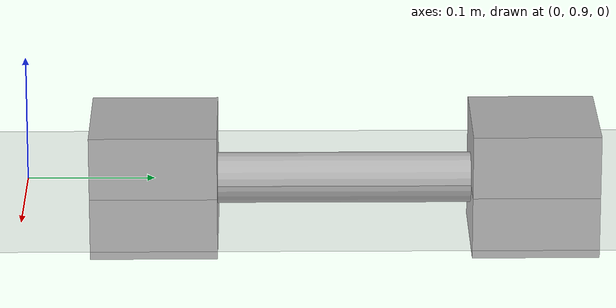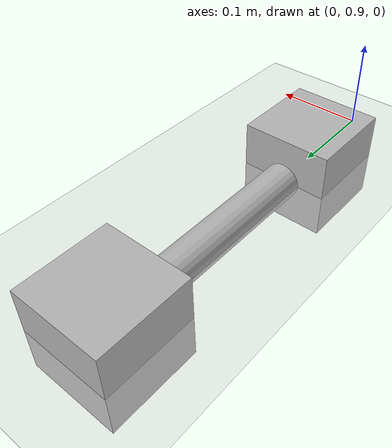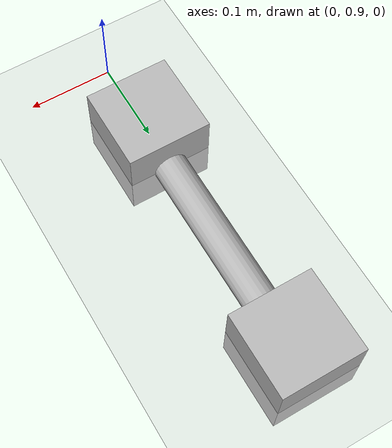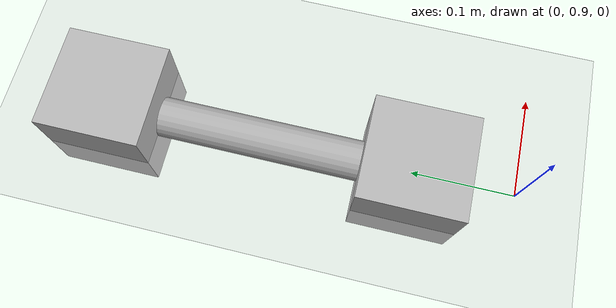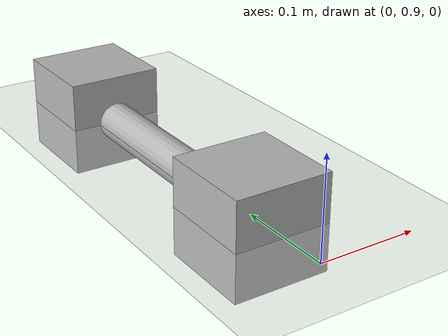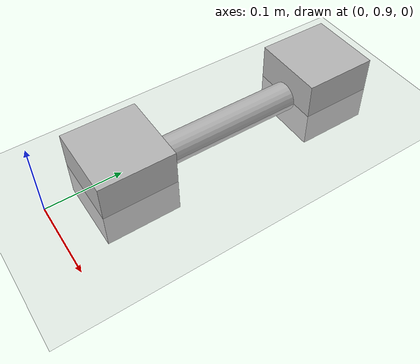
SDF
<?xml version="1.0" ?>
<sdf version="1.5">
  <world name="default">
    <!-- A global light source -->
    <include>
      <uri>model://sun</uri>
    </include>

    <!-- A ground plane -->
    <include>
      <uri>model://ground_plane</uri>
    </include>

    <include>
      <pose>0 1 0 0 0 0</pose>
      <uri>model://object_apriltag0</uri>
    </include>

    <!-- physics parameters -->
    <physics name='default_physics' default='0' type='ode'>
      <gravity>0 0 -9.8066</gravity>
      <ode>
        <solver>
          <type>quick</type>
          <iters>10</iters>
          <sor>1.3</sor>
          <use_dynamic_moi_rescaling>0</use_dynamic_moi_rescaling>
        </solver>
        <constraints>
          <cfm>0</cfm>
          <erp>0.2</erp>
          <contact_max_correcting_vel>100</contact_max_correcting_vel>
          <contact_surface_layer>0.001</contact_surface_layer>
        </constraints>
      </ode>
      <max_step_size>0.002</max_step_size>
      <real_time_factor>1</real_time_factor>
      <real_time_update_rate>500</real_time_update_rate>
      <magnetic_field>6.0e-6 2.3e-5 -4.2e-5</magnetic_field>
    </physics>
  </world>
</sdf>

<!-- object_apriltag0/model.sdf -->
<sdf version="1.4">
<model name="object_apriltag0">
  <static>false</static>
  <pose>0 0 0.05 0 0 0</pose>

    <link name="link1">
      <pose>0 0 0 0 0 0</pose>
      <inertial>
          <inertia>
            <ixx>0.001</ixx>
            <ixy>0</ixy>
            <ixz>0</ixz>
            <iyy>0.001</iyy>
            <iyz>0</iyz>
            <izz>0.001</izz>
          </inertia>
          <mass>0.01</mass>
      </inertial>
      <collision name="collision">
          <geometry>
          <box>
            <size>0.1 0.1 0.1</size>
          </box>
        </geometry>
        <surface>
          <friction>
            <ode>
              <mu>1000</mu>
              <mu2>1000</mu2>
          <fdir1>0 0 0</fdir1>
            </ode>
          </friction>
         </surface>
      </collision>
      <visual name="visual">

        <cast_shadows>false</cast_shadows>
        <geometry>
          <box>
            <size>0.1 0.1 0.1</size>
          </box>
        </geometry>
        <material>
          <script>
            <uri>model://april_tag0/materials/scripts/</uri>
	          <uri>model://april_tag0/materials/textures</uri>
            <name>AprilTag/Tag0</name>
          </script>
        </material>
      </visual>
    </link>

    <link name="link2">
      <pose>0 0.3 0 0 0 0</pose>
      <inertial>
          <inertia>
            <ixx>0.00</ixx>
            <ixy>0</ixy>
            <ixz>0</ixz>
            <iyy>0.001</iyy>
            <iyz>0</iyz>
            <izz>0.001</izz>
          </inertia>
          <mass>0.01</mass>
      </inertial>
      <collision name="collision">
          <geometry>
          <box>
            <size>0.1 0.1 0.1</size>
          </box>
        </geometry>
        <surface>
          <friction>
            <ode>
              <mu>1000</mu>
              <mu2>1000</mu2>
          <fdir1>0 0 0</fdir1>
            </ode>
          </friction>
         </surface>
      </collision>
      <visual name="visual">
        <cast_shadows>false</cast_shadows>
        <geometry>
          <box>
            <size>0.1 0.1 0.1</size>
          </box>
        </geometry>
        <material>
          <script>
            <uri>model://april_tag1/materials/scripts/</uri>
	          <uri>model://april_tag1/materials/textures</uri>
            <name>AprilTag/Tag1</name>
          </script>
        </material>
      </visual>
    </link>

    <link name="link3">
      <pose>0 0.15 0 1.57 0 0</pose>
      <inertial>
          <inertia>
            <ixx>0.001</ixx>
            <ixy>0</ixy>
            <ixz>0</ixz>
            <iyy>0.001</iyy>
            <iyz>0</iyz>
            <izz>0.001</izz>
          </inertia>
          <mass>0.01</mass>
      </inertial>
      <collision name="collision">
          <geometry>
          <cylinder>
            <radius>0.02</radius>
            <length>0.2</length>
          </cylinder>
        </geometry>
      </collision>
      <visual name="visual">
        <cast_shadows>false</cast_shadows>
        <geometry>
          <cylinder>
            <radius>0.02</radius>
            <length>0.2</length>
          </cylinder>
        </geometry>
      </visual>
    </link>

   <joint name="joint1" type="fixed">
      <parent>link1</parent>
      <child>link2</child>
      <axis>
        <xyz>0 0 0</xyz>
      </axis>
    </joint>

   <joint name="joint2" type="fixed">
      <parent>link1</parent>
      <child>link3</child>
      <axis>
        <xyz>0 0 0</xyz>
      </axis>
    </joint>

  </model>
</sdf>
